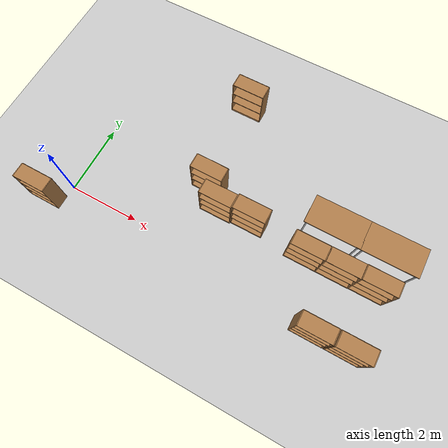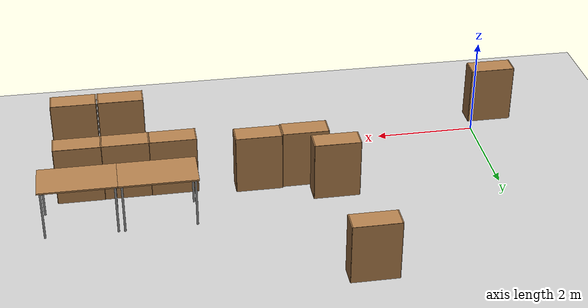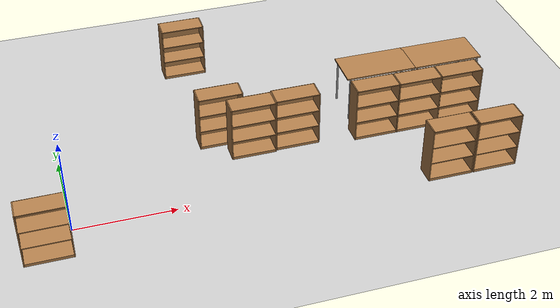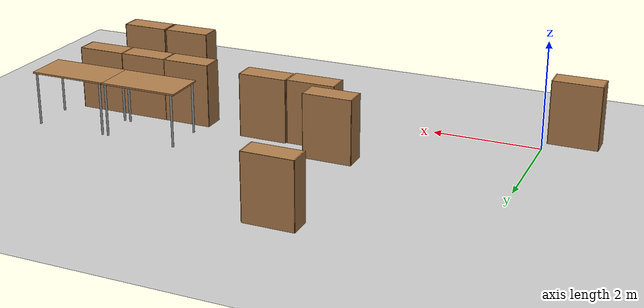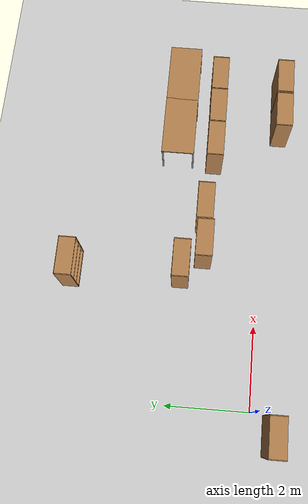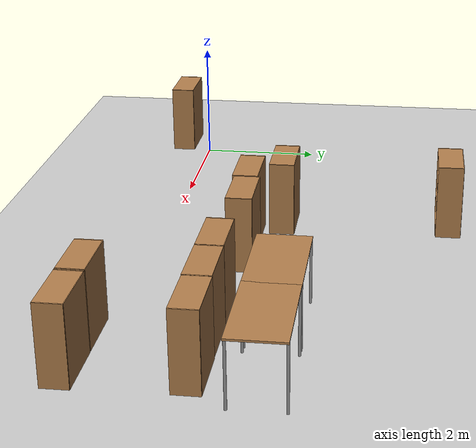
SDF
<sdf version="1.6">
 <world name="default">
  <model name="ground_plane">
   <static>1</static>
   <link name="link">
    <collision name="collision">
     <geometry><plane><normal>0 0 1</normal><size>100 100</size></plane></geometry>
     <surface><friction><ode><mu>100</mu><mu2>50</mu2></ode></friction></surface>
    </collision>
    <visual name="visual">
     <cast_shadows>0</cast_shadows>
     <geometry><plane><normal>0 0 1</normal><size>100 100</size></plane></geometry>
     <material>
      <script><uri>file://media/materials/scripts/gazebo.material</uri><name>Gazebo/Grey</name></script>
     </material>
    </visual>
   </link>
  </model>
  <model name="bookshelf">
   <static>1</static>
   <link name="link">
    <inertial><mass>1</mass></inertial>
    <collision name="back">
     <pose>0 0.005 0.6 0 -0 0</pose>
     <geometry><box><size>0.9 0.01 1.2</size></box></geometry>
    </collision>
    <visual name="visual1">
     <pose>0 0.005 0.6 0 -0 0</pose>
     <geometry><box><size>0.9 0.01 1.2</size></box></geometry>
     <material>
      <script><uri>file://media/materials/scripts/gazebo.material</uri><name>Gazebo/Wood</name></script>
     </material>
    </visual>
    <collision name="left_side">
     <pose>0.45 -0.195 0.6 0 -0 0</pose>
     <geometry><box><size>0.02 0.4 1.2</size></box></geometry>
    </collision>
    <visual name="visual2">
     <pose>0.45 -0.195 0.6 0 -0 0</pose>
     <geometry><box><size>0.02 0.4 1.2</size></box></geometry>
     <material>
      <script><uri>file://media/materials/scripts/gazebo.material</uri><name>Gazebo/Wood</name></script>
     </material>
    </visual>
    <collision name="right_side">
     <pose>-0.45 -0.195 0.6 0 -0 0</pose>
     <geometry><box><size>0.02 0.4 1.2</size></box></geometry>
    </collision>
    <visual name="visual3">
     <pose>-0.45 -0.195 0.6 0 -0 0</pose>
     <geometry><box><size>0.02 0.4 1.2</size></box></geometry>
     <material>
      <script><uri>file://media/materials/scripts/gazebo.material</uri><name>Gazebo/Wood</name></script>
     </material>
    </visual>
    <collision name="bottom">
     <pose>0 -0.195 0.03 0 -0 0</pose>
     <geometry><box><size>0.88 0.4 0.06</size></box></geometry>
    </collision>
    <visual name="visual4">
     <pose>0 -0.195 0.03 0 -0 0</pose>
     <geometry><box><size>0.88 0.4 0.06</size></box></geometry>
     <material>
      <script><uri>file://media/materials/scripts/gazebo.material</uri><name>Gazebo/Wood</name></script>
     </material>
    </visual>
    <collision name="top">
     <pose>0 -0.195 1.19 0 -0 0</pose>
     <geometry><box><size>0.88 0.4 0.02</size></box></geometry>
    </collision>
    <visual name="visual5">
     <pose>0 -0.195 1.19 0 -0 0</pose>
     <geometry><box><size>0.88 0.4 0.02</size></box></geometry>
     <material>
      <script><uri>file://media/materials/scripts/gazebo.material</uri><name>Gazebo/Wood</name></script>
     </material>
    </visual>
    <collision name="low_shelf">
     <pose>0 -0.195 0.43 0 -0 0</pose>
     <geometry><box><size>0.88 0.4 0.02</size></box></geometry>
    </collision>
    <visual name="visual6">
     <pose>0 -0.195 0.43 0 -0 0</pose>
     <geometry><box><size>0.88 0.4 0.02</size></box></geometry>
     <material>
      <script><uri>file://media/materials/scripts/gazebo.material</uri><name>Gazebo/Wood</name></script>
     </material>
    </visual>
    <collision name="high_shelf">
     <pose>0 -0.195 0.8 0 -0 0</pose>
     <geometry><box><size>0.88 0.4 0.02</size></box></geometry>
    </collision>
    <visual name="visual7">
     <pose>0 -0.195 0.8 0 -0 0</pose>
     <geometry><box><size>0.88 0.4 0.02</size></box></geometry>
     <material>
      <script><uri>file://media/materials/scripts/gazebo.material</uri><name>Gazebo/Wood</name></script>
     </material>
    </visual>
   </link>
   <pose>-0.482948 -0.312377 0 0 -0 0</pose>
  </model>
  <model name="table_3">
   <static>1</static>
   <link name="link">
    <collision name="surface">
     <pose>0 0 1 0 -0 0</pose>
     <geometry><box><size>1.5 0.8 0.03</size></box></geometry>
     <surface><friction><ode><mu>0.6</mu><mu2>0.6</mu2></ode></friction></surface>
    </collision>
    <visual name="visual1">
     <pose>0 0 1 0 -0 0</pose>
     <geometry><box><size>1.5 0.8 0.03</size></box></geometry>
     <material>
      <script><uri>file://media/materials/scripts/gazebo.material</uri><name>Gazebo/Wood</name></script>
     </material>
    </visual>
    <collision name="front_left_leg">
     <pose>0.68 0.38 0.5 0 -0 0</pose>
     <geometry><cylinder><radius>0.02</radius><length>1</length></cylinder></geometry>
    </collision>
    <visual name="front_left_leg">
     <pose>0.68 0.38 0.5 0 -0 0</pose>
     <geometry><cylinder><radius>0.02</radius><length>1</length></cylinder></geometry>
     <material>
      <script><uri>file://media/materials/scripts/gazebo.material</uri><name>Gazebo/Grey</name></script>
     </material>
    </visual>
    <collision name="front_right_leg">
     <pose>0.68 -0.38 0.5 0 -0 0</pose>
     <geometry><cylinder><radius>0.02</radius><length>1</length></cylinder></geometry>
    </collision>
    <visual name="front_right_leg">
     <pose>0.68 -0.38 0.5 0 -0 0</pose>
     <geometry><cylinder><radius>0.02</radius><length>1</length></cylinder></geometry>
     <material>
      <script><uri>file://media/materials/scripts/gazebo.material</uri><name>Gazebo/Grey</name></script>
     </material>
    </visual>
    <collision name="back_right_leg">
     <pose>-0.68 -0.38 0.5 0 -0 0</pose>
     <geometry><cylinder><radius>0.02</radius><length>1</length></cylinder></geometry>
    </collision>
    <visual name="back_right_leg">
     <pose>-0.68 -0.38 0.5 0 -0 0</pose>
     <geometry><cylinder><radius>0.02</radius><length>1</length></cylinder></geometry>
     <material>
      <script><uri>file://media/materials/scripts/gazebo.material</uri><name>Gazebo/Grey</name></script>
     </material>
    </visual>
    <collision name="back_left_leg">
     <pose>-0.68 0.38 0.5 0 -0 0</pose>
     <geometry><cylinder><radius>0.02</radius><length>1</length></cylinder></geometry>
    </collision>
    <visual name="back_left_leg">
     <pose>-0.68 0.38 0.5 0 -0 0</pose>
     <geometry><cylinder><radius>0.02</radius><length>1</length></cylinder></geometry>
     <material>
      <script><uri>file://media/materials/scripts/gazebo.material</uri><name>Gazebo/Grey</name></script>
     </material>
    </visual>
   </link>
   <pose>6.73134 2.15492 0 0 -0 0</pose>
  </model>
  <model name="table_4">
   <static>1</static>
   <link name="link">
    <collision name="surface">
     <pose>0 0 1 0 -0 0</pose>
     <geometry><box><size>1.5 0.8 0.03</size></box></geometry>
     <surface><friction><ode><mu>0.6</mu><mu2>0.6</mu2></ode></friction></surface>
    </collision>
    <visual name="visual1">
     <pose>0 0 1 0 -0 0</pose>
     <geometry><box><size>1.5 0.8 0.03</size></box></geometry>
     <material>
      <script><uri>file://media/materials/scripts/gazebo.material</uri><name>Gazebo/Wood</name></script>
     </material>
    </visual>
    <collision name="front_left_leg">
     <pose>0.68 0.38 0.5 0 -0 0</pose>
     <geometry><cylinder><radius>0.02</radius><length>1</length></cylinder></geometry>
    </collision>
    <visual name="front_left_leg">
     <pose>0.68 0.38 0.5 0 -0 0</pose>
     <geometry><cylinder><radius>0.02</radius><length>1</length></cylinder></geometry>
     <material>
      <script><uri>file://media/materials/scripts/gazebo.material</uri><name>Gazebo/Grey</name></script>
     </material>
    </visual>
    <collision name="front_right_leg">
     <pose>0.68 -0.38 0.5 0 -0 0</pose>
     <geometry><cylinder><radius>0.02</radius><length>1</length></cylinder></geometry>
    </collision>
    <visual name="front_right_leg">
     <pose>0.68 -0.38 0.5 0 -0 0</pose>
     <geometry><cylinder><radius>0.02</radius><length>1</length></cylinder></geometry>
     <material>
      <script><uri>file://media/materials/scripts/gazebo.material</uri><name>Gazebo/Grey</name></script>
     </material>
    </visual>
    <collision name="back_right_leg">
     <pose>-0.68 -0.38 0.5 0 -0 0</pose>
     <geometry><cylinder><radius>0.02</radius><length>1</length></cylinder></geometry>
    </collision>
    <visual name="back_right_leg">
     <pose>-0.68 -0.38 0.5 0 -0 0</pose>
     <geometry><cylinder><radius>0.02</radius><length>1</length></cylinder></geometry>
     <material>
      <script><uri>file://media/materials/scripts/gazebo.material</uri><name>Gazebo/Grey</name></script>
     </material>
    </visual>
    <collision name="back_left_leg">
     <pose>-0.68 0.38 0.5 0 -0 0</pose>
     <geometry><cylinder><radius>0.02</radius><length>1</length></cylinder></geometry>
    </collision>
    <visual name="back_left_leg">
     <pose>-0.68 0.38 0.5 0 -0 0</pose>
     <geometry><cylinder><radius>0.02</radius><length>1</length></cylinder></geometry>
     <material>
      <script><uri>file://media/materials/scripts/gazebo.material</uri><name>Gazebo/Grey</name></script>
     </material>
    </visual>
   </link>
   <pose>8.21274 2.15204 0 0 -0 0</pose>
  </model>
  <model name="bookshelf_5">
   <static>1</static>
   <link name="link">
    <inertial><mass>1</mass></inertial>
    <collision name="back">
     <pose>0 0.005 0.6 0 -0 0</pose>
     <geometry><box><size>0.9 0.01 1.2</size></box></geometry>
    </collision>
    <visual name="visual1">
     <pose>0 0.005 0.6 0 -0 0</pose>
     <geometry><box><size>0.9 0.01 1.2</size></box></geometry>
     <material>
      <script><uri>file://media/materials/scripts/gazebo.material</uri><name>Gazebo/Wood</name></script>
     </material>
    </visual>
    <collision name="left_side">
     <pose>0.45 -0.195 0.6 0 -0 0</pose>
     <geometry><box><size>0.02 0.4 1.2</size></box></geometry>
    </collision>
    <visual name="visual2">
     <pose>0.45 -0.195 0.6 0 -0 0</pose>
     <geometry><box><size>0.02 0.4 1.2</size></box></geometry>
     <material>
      <script><uri>file://media/materials/scripts/gazebo.material</uri><name>Gazebo/Wood</name></script>
     </material>
    </visual>
    <collision name="right_side">
     <pose>-0.45 -0.195 0.6 0 -0 0</pose>
     <geometry><box><size>0.02 0.4 1.2</size></box></geometry>
    </collision>
    <visual name="visual3">
     <pose>-0.45 -0.195 0.6 0 -0 0</pose>
     <geometry><box><size>0.02 0.4 1.2</size></box></geometry>
     <material>
      <script><uri>file://media/materials/scripts/gazebo.material</uri><name>Gazebo/Wood</name></script>
     </material>
    </visual>
    <collision name="bottom">
     <pose>0 -0.195 0.03 0 -0 0</pose>
     <geometry><box><size>0.88 0.4 0.06</size></box></geometry>
    </collision>
    <visual name="visual4">
     <pose>0 -0.195 0.03 0 -0 0</pose>
     <geometry><box><size>0.88 0.4 0.06</size></box></geometry>
     <material>
      <script><uri>file://media/materials/scripts/gazebo.material</uri><name>Gazebo/Wood</name></script>
     </material>
    </visual>
    <collision name="top">
     <pose>0 -0.195 1.19 0 -0 0</pose>
     <geometry><box><size>0.88 0.4 0.02</size></box></geometry>
    </collision>
    <visual name="visual5">
     <pose>0 -0.195 1.19 0 -0 0</pose>
     <geometry><box><size>0.88 0.4 0.02</size></box></geometry>
     <material>
      <script><uri>file://media/materials/scripts/gazebo.material</uri><name>Gazebo/Wood</name></script>
     </material>
    </visual>
    <collision name="low_shelf">
     <pose>0 -0.195 0.43 0 -0 0</pose>
     <geometry><box><size>0.88 0.4 0.02</size></box></geometry>
    </collision>
    <visual name="visual6">
     <pose>0 -0.195 0.43 0 -0 0</pose>
     <geometry><box><size>0.88 0.4 0.02</size></box></geometry>
     <material>
      <script><uri>file://media/materials/scripts/gazebo.material</uri><name>Gazebo/Wood</name></script>
     </material>
    </visual>
    <collision name="high_shelf">
     <pose>0 -0.195 0.8 0 -0 0</pose>
     <geometry><box><size>0.88 0.4 0.02</size></box></geometry>
    </collision>
    <visual name="visual7">
     <pose>0 -0.195 0.8 0 -0 0</pose>
     <geometry><box><size>0.88 0.4 0.02</size></box></geometry>
     <material>
      <script><uri>file://media/materials/scripts/gazebo.material</uri><name>Gazebo/Wood</name></script>
     </material>
    </visual>
   </link>
   <pose>3.11158 4.71899 0 0 -0 0</pose>
  </model>
  <model name="bookshelf_6">
   <static>1</static>
   <link name="link">
    <inertial><mass>1</mass></inertial>
    <collision name="back">
     <pose>0 0.005 0.6 0 -0 0</pose>
     <geometry><box><size>0.9 0.01 1.2</size></box></geometry>
    </collision>
    <visual name="visual1">
     <pose>0 0.005 0.6 0 -0 0</pose>
     <geometry><box><size>0.9 0.01 1.2</size></box></geometry>
     <material>
      <script><uri>file://media/materials/scripts/gazebo.material</uri><name>Gazebo/Wood</name></script>
     </material>
    </visual>
    <collision name="left_side">
     <pose>0.45 -0.195 0.6 0 -0 0</pose>
     <geometry><box><size>0.02 0.4 1.2</size></box></geometry>
    </collision>
    <visual name="visual2">
     <pose>0.45 -0.195 0.6 0 -0 0</pose>
     <geometry><box><size>0.02 0.4 1.2</size></box></geometry>
     <material>
      <script><uri>file://media/materials/scripts/gazebo.material</uri><name>Gazebo/Wood</name></script>
     </material>
    </visual>
    <collision name="right_side">
     <pose>-0.45 -0.195 0.6 0 -0 0</pose>
     <geometry><box><size>0.02 0.4 1.2</size></box></geometry>
    </collision>
    <visual name="visual3">
     <pose>-0.45 -0.195 0.6 0 -0 0</pose>
     <geometry><box><size>0.02 0.4 1.2</size></box></geometry>
     <material>
      <script><uri>file://media/materials/scripts/gazebo.material</uri><name>Gazebo/Wood</name></script>
     </material>
    </visual>
    <collision name="bottom">
     <pose>0 -0.195 0.03 0 -0 0</pose>
     <geometry><box><size>0.88 0.4 0.06</size></box></geometry>
    </collision>
    <visual name="visual4">
     <pose>0 -0.195 0.03 0 -0 0</pose>
     <geometry><box><size>0.88 0.4 0.06</size></box></geometry>
     <material>
      <script><uri>file://media/materials/scripts/gazebo.material</uri><name>Gazebo/Wood</name></script>
     </material>
    </visual>
    <collision name="top">
     <pose>0 -0.195 1.19 0 -0 0</pose>
     <geometry><box><size>0.88 0.4 0.02</size></box></geometry>
    </collision>
    <visual name="visual5">
     <pose>0 -0.195 1.19 0 -0 0</pose>
     <geometry><box><size>0.88 0.4 0.02</size></box></geometry>
     <material>
      <script><uri>file://media/materials/scripts/gazebo.material</uri><name>Gazebo/Wood</name></script>
     </material>
    </visual>
    <collision name="low_shelf">
     <pose>0 -0.195 0.43 0 -0 0</pose>
     <geometry><box><size>0.88 0.4 0.02</size></box></geometry>
    </collision>
    <visual name="visual6">
     <pose>0 -0.195 0.43 0 -0 0</pose>
     <geometry><box><size>0.88 0.4 0.02</size></box></geometry>
     <material>
      <script><uri>file://media/materials/scripts/gazebo.material</uri><name>Gazebo/Wood</name></script>
     </material>
    </visual>
    <collision name="high_shelf">
     <pose>0 -0.195 0.8 0 -0 0</pose>
     <geometry><box><size>0.88 0.4 0.02</size></box></geometry>
    </collision>
    <visual name="visual7">
     <pose>0 -0.195 0.8 0 -0 0</pose>
     <geometry><box><size>0.88 0.4 0.02</size></box></geometry>
     <material>
      <script><uri>file://media/materials/scripts/gazebo.material</uri><name>Gazebo/Wood</name></script>
     </material>
    </visual>
   </link>
   <pose>3.28262 2.04049 0 0 -0 0</pose>
  </model>
  <model name="bookshelf_7">
   <static>1</static>
   <link name="link">
    <inertial><mass>1</mass></inertial>
    <collision name="back">
     <pose>0 0.005 0.6 0 -0 0</pose>
     <geometry><box><size>0.9 0.01 1.2</size></box></geometry>
    </collision>
    <visual name="visual1">
     <pose>0 0.005 0.6 0 -0 0</pose>
     <geometry><box><size>0.9 0.01 1.2</size></box></geometry>
     <material>
      <script><uri>file://media/materials/scripts/gazebo.material</uri><name>Gazebo/Wood</name></script>
     </material>
    </visual>
    <collision name="left_side">
     <pose>0.45 -0.195 0.6 0 -0 0</pose>
     <geometry><box><size>0.02 0.4 1.2</size></box></geometry>
    </collision>
    <visual name="visual2">
     <pose>0.45 -0.195 0.6 0 -0 0</pose>
     <geometry><box><size>0.02 0.4 1.2</size></box></geometry>
     <material>
      <script><uri>file://media/materials/scripts/gazebo.material</uri><name>Gazebo/Wood</name></script>
     </material>
    </visual>
    <collision name="right_side">
     <pose>-0.45 -0.195 0.6 0 -0 0</pose>
     <geometry><box><size>0.02 0.4 1.2</size></box></geometry>
    </collision>
    <visual name="visual3">
     <pose>-0.45 -0.195 0.6 0 -0 0</pose>
     <geometry><box><size>0.02 0.4 1.2</size></box></geometry>
     <material>
      <script><uri>file://media/materials/scripts/gazebo.material</uri><name>Gazebo/Wood</name></script>
     </material>
    </visual>
    <collision name="bottom">
     <pose>0 -0.195 0.03 0 -0 0</pose>
     <geometry><box><size>0.88 0.4 0.06</size></box></geometry>
    </collision>
    <visual name="visual4">
     <pose>0 -0.195 0.03 0 -0 0</pose>
     <geometry><box><size>0.88 0.4 0.06</size></box></geometry>
     <material>
      <script><uri>file://media/materials/scripts/gazebo.material</uri><name>Gazebo/Wood</name></script>
     </material>
    </visual>
    <collision name="top">
     <pose>0 -0.195 1.19 0 -0 0</pose>
     <geometry><box><size>0.88 0.4 0.02</size></box></geometry>
    </collision>
    <visual name="visual5">
     <pose>0 -0.195 1.19 0 -0 0</pose>
     <geometry><box><size>0.88 0.4 0.02</size></box></geometry>
     <material>
      <script><uri>file://media/materials/scripts/gazebo.material</uri><name>Gazebo/Wood</name></script>
     </material>
    </visual>
    <collision name="low_shelf">
     <pose>0 -0.195 0.43 0 -0 0</pose>
     <geometry><box><size>0.88 0.4 0.02</size></box></geometry>
    </collision>
    <visual name="visual6">
     <pose>0 -0.195 0.43 0 -0 0</pose>
     <geometry><box><size>0.88 0.4 0.02</size></box></geometry>
     <material>
      <script><uri>file://media/materials/scripts/gazebo.material</uri><name>Gazebo/Wood</name></script>
     </material>
    </visual>
    <collision name="high_shelf">
     <pose>0 -0.195 0.8 0 -0 0</pose>
     <geometry><box><size>0.88 0.4 0.02</size></box></geometry>
    </collision>
    <visual name="visual7">
     <pose>0 -0.195 0.8 0 -0 0</pose>
     <geometry><box><size>0.88 0.4 0.02</size></box></geometry>
     <material>
      <script><uri>file://media/materials/scripts/gazebo.material</uri><name>Gazebo/Wood</name></script>
     </material>
    </visual>
   </link>
   <pose>8.2391 -0.222841 0 0 -0 0</pose>
  </model>
  <model name="bookshelf_8">
   <static>1</static>
   <link name="link">
    <inertial><mass>1</mass></inertial>
    <collision name="back">
     <pose>0 0.005 0.6 0 -0 0</pose>
     <geometry><box><size>0.9 0.01 1.2</size></box></geometry>
    </collision>
    <visual name="visual1">
     <pose>0 0.005 0.6 0 -0 0</pose>
     <geometry><box><size>0.9 0.01 1.2</size></box></geometry>
     <material>
      <script><uri>file://media/materials/scripts/gazebo.material</uri><name>Gazebo/Wood</name></script>
     </material>
    </visual>
    <collision name="left_side">
     <pose>0.45 -0.195 0.6 0 -0 0</pose>
     <geometry><box><size>0.02 0.4 1.2</size></box></geometry>
    </collision>
    <visual name="visual2">
     <pose>0.45 -0.195 0.6 0 -0 0</pose>
     <geometry><box><size>0.02 0.4 1.2</size></box></geometry>
     <material>
      <script><uri>file://media/materials/scripts/gazebo.material</uri><name>Gazebo/Wood</name></script>
     </material>
    </visual>
    <collision name="right_side">
     <pose>-0.45 -0.195 0.6 0 -0 0</pose>
     <geometry><box><size>0.02 0.4 1.2</size></box></geometry>
    </collision>
    <visual name="visual3">
     <pose>-0.45 -0.195 0.6 0 -0 0</pose>
     <geometry><box><size>0.02 0.4 1.2</size></box></geometry>
     <material>
      <script><uri>file://media/materials/scripts/gazebo.material</uri><name>Gazebo/Wood</name></script>
     </material>
    </visual>
    <collision name="bottom">
     <pose>0 -0.195 0.03 0 -0 0</pose>
     <geometry><box><size>0.88 0.4 0.06</size></box></geometry>
    </collision>
    <visual name="visual4">
     <pose>0 -0.195 0.03 0 -0 0</pose>
     <geometry><box><size>0.88 0.4 0.06</size></box></geometry>
     <material>
      <script><uri>file://media/materials/scripts/gazebo.material</uri><name>Gazebo/Wood</name></script>
     </material>
    </visual>
    <collision name="top">
     <pose>0 -0.195 1.19 0 -0 0</pose>
     <geometry><box><size>0.88 0.4 0.02</size></box></geometry>
    </collision>
    <visual name="visual5">
     <pose>0 -0.195 1.19 0 -0 0</pose>
     <geometry><box><size>0.88 0.4 0.02</size></box></geometry>
     <material>
      <script><uri>file://media/materials/scripts/gazebo.material</uri><name>Gazebo/Wood</name></script>
     </material>
    </visual>
    <collision name="low_shelf">
     <pose>0 -0.195 0.43 0 -0 0</pose>
     <geometry><box><size>0.88 0.4 0.02</size></box></geometry>
    </collision>
    <visual name="visual6">
     <pose>0 -0.195 0.43 0 -0 0</pose>
     <geometry><box><size>0.88 0.4 0.02</size></box></geometry>
     <material>
      <script><uri>file://media/materials/scripts/gazebo.material</uri><name>Gazebo/Wood</name></script>
     </material>
    </visual>
    <collision name="high_shelf">
     <pose>0 -0.195 0.8 0 -0 0</pose>
     <geometry><box><size>0.88 0.4 0.02</size></box></geometry>
    </collision>
    <visual name="visual7">
     <pose>0 -0.195 0.8 0 -0 0</pose>
     <geometry><box><size>0.88 0.4 0.02</size></box></geometry>
     <material>
      <script><uri>file://media/materials/scripts/gazebo.material</uri><name>Gazebo/Wood</name></script>
     </material>
    </visual>
   </link>
   <pose>7.2973 -0.224905 0 0 -0 0</pose>
  </model>
  <model name="bookshelf_9">
   <static>1</static>
   <link name="link">
    <inertial><mass>1</mass></inertial>
    <collision name="back">
     <pose>0 0.005 0.6 0 -0 0</pose>
     <geometry><box><size>0.9 0.01 1.2</size></box></geometry>
    </collision>
    <visual name="visual1">
     <pose>0 0.005 0.6 0 -0 0</pose>
     <geometry><box><size>0.9 0.01 1.2</size></box></geometry>
     <material>
      <script><uri>file://media/materials/scripts/gazebo.material</uri><name>Gazebo/Wood</name></script>
     </material>
    </visual>
    <collision name="left_side">
     <pose>0.45 -0.195 0.6 0 -0 0</pose>
     <geometry><box><size>0.02 0.4 1.2</size></box></geometry>
    </collision>
    <visual name="visual2">
     <pose>0.45 -0.195 0.6 0 -0 0</pose>
     <geometry><box><size>0.02 0.4 1.2</size></box></geometry>
     <material>
      <script><uri>file://media/materials/scripts/gazebo.material</uri><name>Gazebo/Wood</name></script>
     </material>
    </visual>
    <collision name="right_side">
     <pose>-0.45 -0.195 0.6 0 -0 0</pose>
     <geometry><box><size>0.02 0.4 1.2</size></box></geometry>
    </collision>
    <visual name="visual3">
     <pose>-0.45 -0.195 0.6 0 -0 0</pose>
     <geometry><box><size>0.02 0.4 1.2</size></box></geometry>
     <material>
      <script><uri>file://media/materials/scripts/gazebo.material</uri><name>Gazebo/Wood</name></script>
     </material>
    </visual>
    <collision name="bottom">
     <pose>0 -0.195 0.03 0 -0 0</pose>
     <geometry><box><size>0.88 0.4 0.06</size></box></geometry>
    </collision>
    <visual name="visual4">
     <pose>0 -0.195 0.03 0 -0 0</pose>
     <geometry><box><size>0.88 0.4 0.06</size></box></geometry>
     <material>
      <script><uri>file://media/materials/scripts/gazebo.material</uri><name>Gazebo/Wood</name></script>
     </material>
    </visual>
    <collision name="top">
     <pose>0 -0.195 1.19 0 -0 0</pose>
     <geometry><box><size>0.88 0.4 0.02</size></box></geometry>
    </collision>
    <visual name="visual5">
     <pose>0 -0.195 1.19 0 -0 0</pose>
     <geometry><box><size>0.88 0.4 0.02</size></box></geometry>
     <material>
      <script><uri>file://media/materials/scripts/gazebo.material</uri><name>Gazebo/Wood</name></script>
     </material>
    </visual>
    <collision name="low_shelf">
     <pose>0 -0.195 0.43 0 -0 0</pose>
     <geometry><box><size>0.88 0.4 0.02</size></box></geometry>
    </collision>
    <visual name="visual6">
     <pose>0 -0.195 0.43 0 -0 0</pose>
     <geometry><box><size>0.88 0.4 0.02</size></box></geometry>
     <material>
      <script><uri>file://media/materials/scripts/gazebo.material</uri><name>Gazebo/Wood</name></script>
     </material>
    </visual>
    <collision name="high_shelf">
     <pose>0 -0.195 0.8 0 -0 0</pose>
     <geometry><box><size>0.88 0.4 0.02</size></box></geometry>
    </collision>
    <visual name="visual7">
     <pose>0 -0.195 0.8 0 -0 0</pose>
     <geometry><box><size>0.88 0.4 0.02</size></box></geometry>
     <material>
      <script><uri>file://media/materials/scripts/gazebo.material</uri><name>Gazebo/Wood</name></script>
     </material>
    </visual>
   </link>
   <pose>6.3759 1.42474 0 0 -0 0</pose>
  </model>
  <model name="bookshelf_10">
   <static>1</static>
   <link name="link">
    <inertial><mass>1</mass></inertial>
    <collision name="back">
     <pose>0 0.005 0.6 0 -0 0</pose>
     <geometry><box><size>0.9 0.01 1.2</size></box></geometry>
    </collision>
    <visual name="visual1">
     <pose>0 0.005 0.6 0 -0 0</pose>
     <geometry><box><size>0.9 0.01 1.2</size></box></geometry>
     <material>
      <script><uri>file://media/materials/scripts/gazebo.material</uri><name>Gazebo/Wood</name></script>
     </material>
    </visual>
    <collision name="left_side">
     <pose>0.45 -0.195 0.6 0 -0 0</pose>
     <geometry><box><size>0.02 0.4 1.2</size></box></geometry>
    </collision>
    <visual name="visual2">
     <pose>0.45 -0.195 0.6 0 -0 0</pose>
     <geometry><box><size>0.02 0.4 1.2</size></box></geometry>
     <material>
      <script><uri>file://media/materials/scripts/gazebo.material</uri><name>Gazebo/Wood</name></script>
     </material>
    </visual>
    <collision name="right_side">
     <pose>-0.45 -0.195 0.6 0 -0 0</pose>
     <geometry><box><size>0.02 0.4 1.2</size></box></geometry>
    </collision>
    <visual name="visual3">
     <pose>-0.45 -0.195 0.6 0 -0 0</pose>
     <geometry><box><size>0.02 0.4 1.2</size></box></geometry>
     <material>
      <script><uri>file://media/materials/scripts/gazebo.material</uri><name>Gazebo/Wood</name></script>
     </material>
    </visual>
    <collision name="bottom">
     <pose>0 -0.195 0.03 0 -0 0</pose>
     <geometry><box><size>0.88 0.4 0.06</size></box></geometry>
    </collision>
    <visual name="visual4">
     <pose>0 -0.195 0.03 0 -0 0</pose>
     <geometry><box><size>0.88 0.4 0.06</size></box></geometry>
     <material>
      <script><uri>file://media/materials/scripts/gazebo.material</uri><name>Gazebo/Wood</name></script>
     </material>
    </visual>
    <collision name="top">
     <pose>0 -0.195 1.19 0 -0 0</pose>
     <geometry><box><size>0.88 0.4 0.02</size></box></geometry>
    </collision>
    <visual name="visual5">
     <pose>0 -0.195 1.19 0 -0 0</pose>
     <geometry><box><size>0.88 0.4 0.02</size></box></geometry>
     <material>
      <script><uri>file://media/materials/scripts/gazebo.material</uri><name>Gazebo/Wood</name></script>
     </material>
    </visual>
    <collision name="low_shelf">
     <pose>0 -0.195 0.43 0 -0 0</pose>
     <geometry><box><size>0.88 0.4 0.02</size></box></geometry>
    </collision>
    <visual name="visual6">
     <pose>0 -0.195 0.43 0 -0 0</pose>
     <geometry><box><size>0.88 0.4 0.02</size></box></geometry>
     <material>
      <script><uri>file://media/materials/scripts/gazebo.material</uri><name>Gazebo/Wood</name></script>
     </material>
    </visual>
    <collision name="high_shelf">
     <pose>0 -0.195 0.8 0 -0 0</pose>
     <geometry><box><size>0.88 0.4 0.02</size></box></geometry>
    </collision>
    <visual name="visual7">
     <pose>0 -0.195 0.8 0 -0 0</pose>
     <geometry><box><size>0.88 0.4 0.02</size></box></geometry>
     <material>
      <script><uri>file://media/materials/scripts/gazebo.material</uri><name>Gazebo/Wood</name></script>
     </material>
    </visual>
   </link>
   <pose>7.28516 1.42447 0 0 -0 0</pose>
  </model>
  <model name="bookshelf_11">
   <static>1</static>
   <link name="link">
    <inertial><mass>1</mass></inertial>
    <collision name="back">
     <pose>0 0.005 0.6 0 -0 0</pose>
     <geometry><box><size>0.9 0.01 1.2</size></box></geometry>
    </collision>
    <visual name="visual1">
     <pose>0 0.005 0.6 0 -0 0</pose>
     <geometry><box><size>0.9 0.01 1.2</size></box></geometry>
     <material>
      <script><uri>file://media/materials/scripts/gazebo.material</uri><name>Gazebo/Wood</name></script>
     </material>
    </visual>
    <collision name="left_side">
     <pose>0.45 -0.195 0.6 0 -0 0</pose>
     <geometry><box><size>0.02 0.4 1.2</size></box></geometry>
    </collision>
    <visual name="visual2">
     <pose>0.45 -0.195 0.6 0 -0 0</pose>
     <geometry><box><size>0.02 0.4 1.2</size></box></geometry>
     <material>
      <script><uri>file://media/materials/scripts/gazebo.material</uri><name>Gazebo/Wood</name></script>
     </material>
    </visual>
    <collision name="right_side">
     <pose>-0.45 -0.195 0.6 0 -0 0</pose>
     <geometry><box><size>0.02 0.4 1.2</size></box></geometry>
    </collision>
    <visual name="visual3">
     <pose>-0.45 -0.195 0.6 0 -0 0</pose>
     <geometry><box><size>0.02 0.4 1.2</size></box></geometry>
     <material>
      <script><uri>file://media/materials/scripts/gazebo.material</uri><name>Gazebo/Wood</name></script>
     </material>
    </visual>
    <collision name="bottom">
     <pose>0 -0.195 0.03 0 -0 0</pose>
     <geometry><box><size>0.88 0.4 0.06</size></box></geometry>
    </collision>
    <visual name="visual4">
     <pose>0 -0.195 0.03 0 -0 0</pose>
     <geometry><box><size>0.88 0.4 0.06</size></box></geometry>
     <material>
      <script><uri>file://media/materials/scripts/gazebo.material</uri><name>Gazebo/Wood</name></script>
     </material>
    </visual>
    <collision name="top">
     <pose>0 -0.195 1.19 0 -0 0</pose>
     <geometry><box><size>0.88 0.4 0.02</size></box></geometry>
    </collision>
    <visual name="visual5">
     <pose>0 -0.195 1.19 0 -0 0</pose>
     <geometry><box><size>0.88 0.4 0.02</size></box></geometry>
     <material>
      <script><uri>file://media/materials/scripts/gazebo.material</uri><name>Gazebo/Wood</name></script>
     </material>
    </visual>
    <collision name="low_shelf">
     <pose>0 -0.195 0.43 0 -0 0</pose>
     <geometry><box><size>0.88 0.4 0.02</size></box></geometry>
    </collision>
    <visual name="visual6">
     <pose>0 -0.195 0.43 0 -0 0</pose>
     <geometry><box><size>0.88 0.4 0.02</size></box></geometry>
     <material>
      <script><uri>file://media/materials/scripts/gazebo.material</uri><name>Gazebo/Wood</name></script>
     </material>
    </visual>
    <collision name="high_shelf">
     <pose>0 -0.195 0.8 0 -0 0</pose>
     <geometry><box><size>0.88 0.4 0.02</size></box></geometry>
    </collision>
    <visual name="visual7">
     <pose>0 -0.195 0.8 0 -0 0</pose>
     <geometry><box><size>0.88 0.4 0.02</size></box></geometry>
     <material>
      <script><uri>file://media/materials/scripts/gazebo.material</uri><name>Gazebo/Wood</name></script>
     </material>
    </visual>
   </link>
   <pose>8.19351 1.43101 0 0 -0 0</pose>
  </model>
  <model name="bookshelf_12">
   <static>1</static>
   <link name="link">
    <inertial><mass>1</mass></inertial>
    <collision name="back">
     <pose>0 0.005 0.6 0 -0 0</pose>
     <geometry><box><size>0.9 0.01 1.2</size></box></geometry>
    </collision>
    <visual name="visual1">
     <pose>0 0.005 0.6 0 -0 0</pose>
     <geometry><box><size>0.9 0.01 1.2</size></box></geometry>
     <material>
      <script><uri>file://media/materials/scripts/gazebo.material</uri><name>Gazebo/Wood</name></script>
     </material>
    </visual>
    <collision name="left_side">
     <pose>0.45 -0.195 0.6 0 -0 0</pose>
     <geometry><box><size>0.02 0.4 1.2</size></box></geometry>
    </collision>
    <visual name="visual2">
     <pose>0.45 -0.195 0.6 0 -0 0</pose>
     <geometry><box><size>0.02 0.4 1.2</size></box></geometry>
     <material>
      <script><uri>file://media/materials/scripts/gazebo.material</uri><name>Gazebo/Wood</name></script>
     </material>
    </visual>
    <collision name="right_side">
     <pose>-0.45 -0.195 0.6 0 -0 0</pose>
     <geometry><box><size>0.02 0.4 1.2</size></box></geometry>
    </collision>
    <visual name="visual3">
     <pose>-0.45 -0.195 0.6 0 -0 0</pose>
     <geometry><box><size>0.02 0.4 1.2</size></box></geometry>
     <material>
      <script><uri>file://media/materials/scripts/gazebo.material</uri><name>Gazebo/Wood</name></script>
     </material>
    </visual>
    <collision name="bottom">
     <pose>0 -0.195 0.03 0 -0 0</pose>
     <geometry><box><size>0.88 0.4 0.06</size></box></geometry>
    </collision>
    <visual name="visual4">
     <pose>0 -0.195 0.03 0 -0 0</pose>
     <geometry><box><size>0.88 0.4 0.06</size></box></geometry>
     <material>
      <script><uri>file://media/materials/scripts/gazebo.material</uri><name>Gazebo/Wood</name></script>
     </material>
    </visual>
    <collision name="top">
     <pose>0 -0.195 1.19 0 -0 0</pose>
     <geometry><box><size>0.88 0.4 0.02</size></box></geometry>
    </collision>
    <visual name="visual5">
     <pose>0 -0.195 1.19 0 -0 0</pose>
     <geometry><box><size>0.88 0.4 0.02</size></box></geometry>
     <material>
      <script><uri>file://media/materials/scripts/gazebo.material</uri><name>Gazebo/Wood</name></script>
     </material>
    </visual>
    <collision name="low_shelf">
     <pose>0 -0.195 0.43 0 -0 0</pose>
     <geometry><box><size>0.88 0.4 0.02</size></box></geometry>
    </collision>
    <visual name="visual6">
     <pose>0 -0.195 0.43 0 -0 0</pose>
     <geometry><box><size>0.88 0.4 0.02</size></box></geometry>
     <material>
      <script><uri>file://media/materials/scripts/gazebo.material</uri><name>Gazebo/Wood</name></script>
     </material>
    </visual>
    <collision name="high_shelf">
     <pose>0 -0.195 0.8 0 -0 0</pose>
     <geometry><box><size>0.88 0.4 0.02</size></box></geometry>
    </collision>
    <visual name="visual7">
     <pose>0 -0.195 0.8 0 -0 0</pose>
     <geometry><box><size>0.88 0.4 0.02</size></box></geometry>
     <material>
      <script><uri>file://media/materials/scripts/gazebo.material</uri><name>Gazebo/Wood</name></script>
     </material>
    </visual>
   </link>
   <pose>4.73559 1.56776 0 0 -0 0</pose>
  </model>
  <model name="bookshelf_13">
   <static>1</static>
   <link name="link">
    <inertial><mass>1</mass></inertial>
    <collision name="back">
     <pose>0 0.005 0.6 0 -0 0</pose>
     <geometry><box><size>0.9 0.01 1.2</size></box></geometry>
    </collision>
    <visual name="visual1">
     <pose>0 0.005 0.6 0 -0 0</pose>
     <geometry><box><size>0.9 0.01 1.2</size></box></geometry>
     <material>
      <script><uri>file://media/materials/scripts/gazebo.material</uri><name>Gazebo/Wood</name></script>
     </material>
    </visual>
    <collision name="left_side">
     <pose>0.45 -0.195 0.6 0 -0 0</pose>
     <geometry><box><size>0.02 0.4 1.2</size></box></geometry>
    </collision>
    <visual name="visual2">
     <pose>0.45 -0.195 0.6 0 -0 0</pose>
     <geometry><box><size>0.02 0.4 1.2</size></box></geometry>
     <material>
      <script><uri>file://media/materials/scripts/gazebo.material</uri><name>Gazebo/Wood</name></script>
     </material>
    </visual>
    <collision name="right_side">
     <pose>-0.45 -0.195 0.6 0 -0 0</pose>
     <geometry><box><size>0.02 0.4 1.2</size></box></geometry>
    </collision>
    <visual name="visual3">
     <pose>-0.45 -0.195 0.6 0 -0 0</pose>
     <geometry><box><size>0.02 0.4 1.2</size></box></geometry>
     <material>
      <script><uri>file://media/materials/scripts/gazebo.material</uri><name>Gazebo/Wood</name></script>
     </material>
    </visual>
    <collision name="bottom">
     <pose>0 -0.195 0.03 0 -0 0</pose>
     <geometry><box><size>0.88 0.4 0.06</size></box></geometry>
    </collision>
    <visual name="visual4">
     <pose>0 -0.195 0.03 0 -0 0</pose>
     <geometry><box><size>0.88 0.4 0.06</size></box></geometry>
     <material>
      <script><uri>file://media/materials/scripts/gazebo.material</uri><name>Gazebo/Wood</name></script>
     </material>
    </visual>
    <collision name="top">
     <pose>0 -0.195 1.19 0 -0 0</pose>
     <geometry><box><size>0.88 0.4 0.02</size></box></geometry>
    </collision>
    <visual name="visual5">
     <pose>0 -0.195 1.19 0 -0 0</pose>
     <geometry><box><size>0.88 0.4 0.02</size></box></geometry>
     <material>
      <script><uri>file://media/materials/scripts/gazebo.material</uri><name>Gazebo/Wood</name></script>
     </material>
    </visual>
    <collision name="low_shelf">
     <pose>0 -0.195 0.43 0 -0 0</pose>
     <geometry><box><size>0.88 0.4 0.02</size></box></geometry>
    </collision>
    <visual name="visual6">
     <pose>0 -0.195 0.43 0 -0 0</pose>
     <geometry><box><size>0.88 0.4 0.02</size></box></geometry>
     <material>
      <script><uri>file://media/materials/scripts/gazebo.material</uri><name>Gazebo/Wood</name></script>
     </material>
    </visual>
    <collision name="high_shelf">
     <pose>0 -0.195 0.8 0 -0 0</pose>
     <geometry><box><size>0.88 0.4 0.02</size></box></geometry>
    </collision>
    <visual name="visual7">
     <pose>0 -0.195 0.8 0 -0 0</pose>
     <geometry><box><size>0.88 0.4 0.02</size></box></geometry>
     <material>
      <script><uri>file://media/materials/scripts/gazebo.material</uri><name>Gazebo/Wood</name></script>
     </material>
    </visual>
   </link>
   <pose>3.81492 1.53058 0 0 -0 0</pose>
  </model>
 </world>
</sdf>
